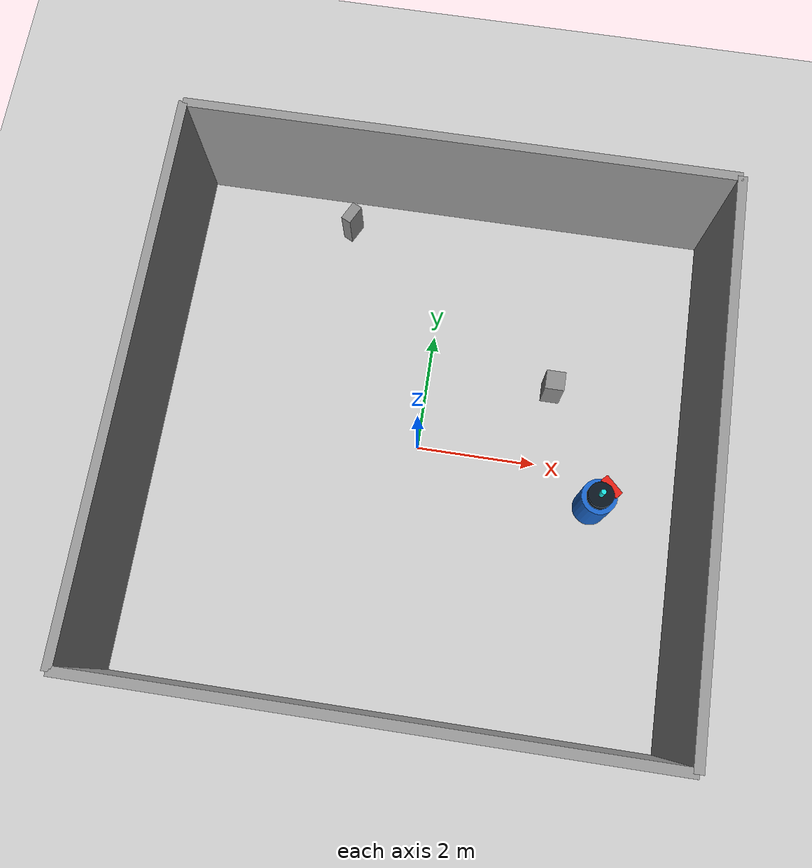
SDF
<sdf version="1.7">
 <world name="default">
  <plugin name="socnav_plugin" filename="libSocNavPlugin.so">
   <robot_name>robot</robot_name>
   <trajectory_file>/home/hunav_gz_classic_ws/SocNav3_trajectories/src6/000003832.json</trajectory_file>
   <human_slots>1</human_slots>
   <goal_angle_mesh>
    <angle_threshold>2.58542137554</angle_threshold>
    <uri>/home/hunav_gz_classic_ws/src/socnav_gazebo_reproducer/meshes/000003832_goal_angle_00.stl</uri>
   </goal_angle_mesh>
  </plugin>
  <light name="sun" type="directional">
   <pose>0 0 10 0 -0 0</pose>
   <diffuse>0.8 0.8 0.8 1</diffuse>
   <specular>0.2 0.2 0.2 1</specular>
   <attenuation>
    <range>1000</range>
    <constant>0.9</constant>
    <linear>0.01</linear>
    <quadratic>0.001</quadratic>
   </attenuation>
   <direction>-0.5 0.1 -0.9</direction>
   <spot><inner_angle>0</inner_angle><outer_angle>0</outer_angle><falloff>0</falloff></spot>
  </light>
  <model name="ground_plane">
   <static>1</static>
   <link name="link">
    <collision name="collision">
     <geometry><plane><normal>0 0 1</normal><size>100 100</size></plane></geometry>
     <surface><friction><ode><mu>100</mu><mu2>50</mu2></ode></friction></surface>
    </collision>
    <visual name="visual">
     <cast_shadows>0</cast_shadows>
     <geometry><plane><normal>0 0 1</normal><size>100 100</size></plane></geometry>
     <material>
      <script><uri>file://media/materials/scripts/kitchen.material</uri><name>Kitchen/CounterTop_H</name></script>
     </material>
    </visual>
   </link>
  </model>
  <gravity>0 0 -9.8</gravity>
  <magnetic_field>6e-06 2.3e-05 -4.2e-05</magnetic_field>
  <atmosphere type="adiabatic"/>
  <physics type="ode">
   <max_step_size>0.001</max_step_size>
   <real_time_factor>1</real_time_factor>
   <real_time_update_rate>1000</real_time_update_rate>
  </physics>
  <scene><ambient>0.4 0.4 0.4 1</ambient><background>0.7 0.7 0.7 1</background><shadows>1</shadows></scene>
  <audio><device>default</device></audio>
  <spherical_coordinates>
   <surface_model>EARTH_WGS84</surface_model>
   <latitude_deg>0</latitude_deg>
   <longitude_deg>0</longitude_deg>
   <elevation>0</elevation>
   <heading_deg>0</heading_deg>
  </spherical_coordinates>
  <model name="robot">
   <pose>3.0033740052894657 -0.598405343470988 0.5 0 0 0.8076243637178115</pose>
   <link name="link">
    <collision name="collision">
     <geometry><cylinder><radius>0.2888197829493148</radius><length>1.0</length></cylinder></geometry>
    </collision>
    <visual name="visual">
     <geometry><cylinder><radius>0.2888197829493148</radius><length>1.0</length></cylinder></geometry>
     <material><ambient>0.1 0.4 0.8 1</ambient><diffuse>0.1 0.4 0.8 1</diffuse></material>
    </visual>
    <visual name="robot_top">
     <pose>0 0 0.58 0 0 0</pose>
     <geometry><cylinder><radius>0.20795024372350665</radius><length>0.16</length></cylinder></geometry>
     <material><ambient>0.04 0.08 0.12 1</ambient><diffuse>0.04 0.08 0.12 1</diffuse></material>
    </visual>
    <visual name="robot_front">
     <pose>0.24260861767742445 0 0.44 0 0 0</pose>
     <geometry><box><size>0.1386334958156711 0.36968932217512296 0.24</size></box></geometry>
     <material><ambient>0.9 0.12 0.08 1</ambient><diffuse>0.9 0.12 0.08 1</diffuse></material>
    </visual>
    <visual name="robot_sensor">
     <pose>0 0 0.78 0 0 0</pose>
     <geometry><cylinder><radius>0.04043476961290408</radius><length>0.24</length></cylinder></geometry>
     <material><ambient>0.1 0.9 0.9 1</ambient><diffuse>0.1 0.9 0.9 1</diffuse></material>
    </visual>
   </link>
  </model>
  <model name="static_object_0">
   <static>true</static>
   <pose>-1.743393608080776 3.8169800102635754 0.375 0 0 1.1140388076064176</pose>
   <link name="link">
    <collision name="collision"><geometry><box><size>0.35 0.18 0.75</size></box></geometry></collision>
    <visual name="visual">
     <geometry><box><size>0.35 0.18 0.75</size></box></geometry>
     <material><ambient>0.55 0.55 0.55 1</ambient><diffuse>0.55 0.55 0.55 1</diffuse></material>
    </visual>
   </link>
  </model>
  <model name="static_object_3">
   <static>true</static>
   <pose>2.1202178992224416 1.3050612021937686 0.375 0 0 0</pose>
   <link name="link">
    <collision name="collision">
     <geometry><box><size>0.32161688952422923 0.32161688952422923 0.75</size></box></geometry>
    </collision>
    <visual name="visual">
     <geometry><box><size>0.32161688952422923 0.32161688952422923 0.75</size></box></geometry>
     <material><ambient>0.55 0.55 0.55 1</ambient><diffuse>0.55 0.55 0.55 1</diffuse></material>
    </visual>
   </link>
  </model>
  <model name="simple_world_test">
   <link name="Wall_0">
    <collision name="Wall_0_Collision">
     <geometry><box><size>8.942901706203312 0.15 2.5</size></box></geometry>
     <pose>0 0 1.25 0 -0 0</pose>
    </collision>
    <visual name="Wall_0_Visual">
     <pose>0 0 1.25 0 -0 0</pose>
     <geometry><box><size>8.942901706203312 0.15 2.5</size></box></geometry>
     <material>
      <script><uri>file://media/materials/scripts/gazebo.material</uri><name>Gazebo/Grey</name></script>
      <ambient>1 1 1 1</ambient>
     </material>
     <meta><layer>0</layer></meta>
    </visual>
    <pose>4.461450853101656 0.0 0 0 -0 -1.5707963267948966</pose>
   </link>
   <link name="Wall_1">
    <collision name="Wall_1_Collision">
     <geometry><box><size>8.942901706203312 0.15 2.5</size></box></geometry>
     <pose>0 0 1.25 0 -0 0</pose>
    </collision>
    <visual name="Wall_1_Visual">
     <pose>0 0 1.25 0 -0 0</pose>
     <geometry><box><size>8.942901706203312 0.15 2.5</size></box></geometry>
     <material>
      <script><uri>file://media/materials/scripts/gazebo.material</uri><name>Gazebo/Grey</name></script>
      <ambient>1 1 1 1</ambient>
     </material>
     <meta><layer>0</layer></meta>
    </visual>
    <pose>0.0 -4.461450853101656 0 0 -0 -3.141592653589793</pose>
   </link>
   <link name="Wall_2">
    <collision name="Wall_2_Collision">
     <geometry><box><size>8.942901706203312 0.15 2.5</size></box></geometry>
     <pose>0 0 1.25 0 -0 0</pose>
    </collision>
    <visual name="Wall_2_Visual">
     <pose>0 0 1.25 0 -0 0</pose>
     <geometry><box><size>8.942901706203312 0.15 2.5</size></box></geometry>
     <material>
      <script><uri>file://media/materials/scripts/gazebo.material</uri><name>Gazebo/Grey</name></script>
      <ambient>1 1 1 1</ambient>
     </material>
     <meta><layer>0</layer></meta>
    </visual>
    <pose>-4.461450853101656 0.0 0 0 -0 1.5707963267948966</pose>
   </link>
   <link name="Wall_3">
    <collision name="Wall_3_Collision">
     <geometry><box><size>8.942901706203312 0.15 2.5</size></box></geometry>
     <pose>0 0 1.25 0 -0 0</pose>
    </collision>
    <visual name="Wall_3_Visual">
     <pose>0 0 1.25 0 -0 0</pose>
     <geometry><box><size>8.942901706203312 0.15 2.5</size></box></geometry>
     <material>
      <script><uri>file://media/materials/scripts/gazebo.material</uri><name>Gazebo/Grey</name></script>
      <ambient>1 1 1 1</ambient>
     </material>
     <meta><layer>0</layer></meta>
    </visual>
    <pose>0.0 4.461450853101656 0 0 -0 0.0</pose>
   </link>
   <static>1</static>
  </model>
 </world>
</sdf>
